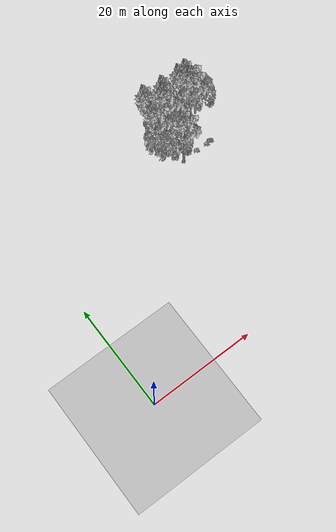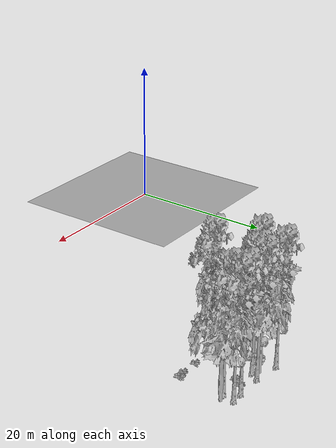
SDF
<sdf version="1.7">
 <world name="default">
  <model name="ground_plane">
   <static>1</static>
   <link name="link">
    <collision name="collision">
     <pose>-50 0 0 0 -0 0</pose>
     <geometry><plane><normal>0 0 1</normal><size>80 80</size></plane></geometry>
     <surface><contact><ode><min_depth>0.01</min_depth><max_vel>0</max_vel></ode></contact></surface>
    </collision>
    <visual name="grass">
     <cast_shadows>0</cast_shadows>
     <geometry>
      <mesh>
       <scale>0.46714285714285714 0.46714285714285714 0.1</scale>
       <uri>file://grass_plane/meshes/grass_plane.dae</uri>
      </mesh>
     </geometry>
    </visual>
   </link>
  </model>
  <model name="Tree 117">
   <static>1</static>
   <pose>35.58147520326497 39.32849639410783 0 1.57079 -0 0</pose>
   <link name="link">
    <collision name="collision">
     <geometry><mesh><scale>3.5 5 3.5</scale><uri>model://tree_9/meshes/tree_9.obj</uri></mesh></geometry>
    </collision>
    <visual name="visual">
     <geometry><mesh><scale>3.5 5 3.5</scale><uri>model://tree_9/meshes/tree_9.obj</uri></mesh></geometry>
    </visual>
   </link>
  </model>
  <model name="Tree 137">
   <static>1</static>
   <pose>38.25605384794942 38.461657270254776 0 1.57079 -0 0</pose>
   <link name="link">
    <collision name="collision">
     <geometry><mesh><scale>3.5 5 3.5</scale><uri>model://tree_2/meshes/tree_2.obj</uri></mesh></geometry>
    </collision>
    <visual name="visual">
     <geometry><mesh><scale>3.5 5 3.5</scale><uri>model://tree_2/meshes/tree_2.obj</uri></mesh></geometry>
    </visual>
   </link>
  </model>
  <model name="Tree 165">
   <static>1</static>
   <pose>37.071473663392155 39.37795550022172 0 1.57079 -0 0</pose>
   <link name="link">
    <collision name="collision">
     <geometry><mesh><scale>3.5 5 3.5</scale><uri>model://tree_9/meshes/tree_9.obj</uri></mesh></geometry>
    </collision>
    <visual name="visual">
     <geometry><mesh><scale>3.5 5 3.5</scale><uri>model://tree_9/meshes/tree_9.obj</uri></mesh></geometry>
    </visual>
   </link>
  </model>
  <model name="Tree 251">
   <static>1</static>
   <pose>29.38675334142428 33.38608917403582 0 1.57079 -0 0</pose>
   <link name="link">
    <collision name="collision">
     <geometry><mesh><scale>3.5 5 3.5</scale><uri>model://tree_2/meshes/tree_2.obj</uri></mesh></geometry>
    </collision>
    <visual name="visual">
     <geometry><mesh><scale>3.5 5 3.5</scale><uri>model://tree_2/meshes/tree_2.obj</uri></mesh></geometry>
    </visual>
   </link>
  </model>
  <model name="Tree 351">
   <static>1</static>
   <pose>28.522954845922825 35.44630254125421 0 1.57079 -0 0</pose>
   <link name="link">
    <collision name="collision">
     <geometry><mesh><scale>3.5 5 3.5</scale><uri>model://tree_2/meshes/tree_2.obj</uri></mesh></geometry>
    </collision>
    <visual name="visual">
     <geometry><mesh><scale>3.5 5 3.5</scale><uri>model://tree_2/meshes/tree_2.obj</uri></mesh></geometry>
    </visual>
   </link>
  </model>
  <model name="Tree 413">
   <static>1</static>
   <pose>36.794026243615036 37.89402465982626 0 1.57079 -0 0</pose>
   <link name="link">
    <collision name="collision">
     <geometry><mesh><scale>3.5 5 3.5</scale><uri>model://tree_9/meshes/tree_9.obj</uri></mesh></geometry>
    </collision>
    <visual name="visual">
     <geometry><mesh><scale>3.5 5 3.5</scale><uri>model://tree_9/meshes/tree_9.obj</uri></mesh></geometry>
    </visual>
   </link>
  </model>
  <model name="Tree 494">
   <static>1</static>
   <pose>29.810043735012144 36.28128183584424 0 1.57079 -0 0</pose>
   <link name="link">
    <collision name="collision">
     <geometry><mesh><scale>3.5 5 3.5</scale><uri>model://tree_2/meshes/tree_2.obj</uri></mesh></geometry>
    </collision>
    <visual name="visual">
     <geometry><mesh><scale>3.5 5 3.5</scale><uri>model://tree_2/meshes/tree_2.obj</uri></mesh></geometry>
    </visual>
   </link>
  </model>
  <model name="Tree 501">
   <static>1</static>
   <pose>31.385145458730065 38.18989758573741 0 1.57079 -0 0</pose>
   <link name="link">
    <collision name="collision">
     <geometry><mesh><scale>3.5 5 3.5</scale><uri>model://tree_9/meshes/tree_9.obj</uri></mesh></geometry>
    </collision>
    <visual name="visual">
     <geometry><mesh><scale>3.5 5 3.5</scale><uri>model://tree_9/meshes/tree_9.obj</uri></mesh></geometry>
    </visual>
   </link>
  </model>
  <model name="Tree 524">
   <static>1</static>
   <pose>28.63423434896262 39.68240983284322 0 1.57079 -0 0</pose>
   <link name="link">
    <collision name="collision">
     <geometry><mesh><scale>3.5 5 3.5</scale><uri>model://tree_9/meshes/tree_9.obj</uri></mesh></geometry>
    </collision>
    <visual name="visual">
     <geometry><mesh><scale>3.5 5 3.5</scale><uri>model://tree_9/meshes/tree_9.obj</uri></mesh></geometry>
    </visual>
   </link>
  </model>
  <model name="Tree 534">
   <static>1</static>
   <pose>30.869394688324192 32.190862434742485 0 1.57079 -0 0</pose>
   <link name="link">
    <collision name="collision">
     <geometry><mesh><scale>3.5 5 3.5</scale><uri>model://tree_9/meshes/tree_9.obj</uri></mesh></geometry>
    </collision>
    <visual name="visual">
     <geometry><mesh><scale>3.5 5 3.5</scale><uri>model://tree_9/meshes/tree_9.obj</uri></mesh></geometry>
    </visual>
   </link>
  </model>
  <model name="Tree 551">
   <static>1</static>
   <pose>31.212012586435847 39.04339947861422 0 1.57079 -0 0</pose>
   <link name="link">
    <collision name="collision">
     <geometry><mesh><scale>3.5 5 3.5</scale><uri>model://tree_2/meshes/tree_2.obj</uri></mesh></geometry>
    </collision>
    <visual name="visual">
     <geometry><mesh><scale>3.5 5 3.5</scale><uri>model://tree_2/meshes/tree_2.obj</uri></mesh></geometry>
    </visual>
   </link>
  </model>
  <model name="Tree 601">
   <static>1</static>
   <pose>32.136387446565195 39.26584646786824 0 1.57079 -0 0</pose>
   <link name="link">
    <collision name="collision">
     <geometry><mesh><scale>3.5 5 3.5</scale><uri>model://tree_9/meshes/tree_9.obj</uri></mesh></geometry>
    </collision>
    <visual name="visual">
     <geometry><mesh><scale>3.5 5 3.5</scale><uri>model://tree_9/meshes/tree_9.obj</uri></mesh></geometry>
    </visual>
   </link>
  </model>
  <model name="Tree 607">
   <static>1</static>
   <pose>27.926088597943178 36.328938424209966 0 1.57079 -0 0</pose>
   <link name="link">
    <collision name="collision">
     <geometry><mesh><scale>3.5 5 3.5</scale><uri>model://tree_9/meshes/tree_9.obj</uri></mesh></geometry>
    </collision>
    <visual name="visual">
     <geometry><mesh><scale>3.5 5 3.5</scale><uri>model://tree_9/meshes/tree_9.obj</uri></mesh></geometry>
    </visual>
   </link>
  </model>
  <model name="Bush 81">
   <static>1</static>
   <pose>36.96815110661741 32.46302613303814 0 1.57079 -0 0</pose>
   <link name="link">
    <collision name="collision">
     <geometry><mesh><scale>2 2 2</scale><uri>model://bush_2/meshes/bush_2.obj</uri></mesh></geometry>
     <surface><contact><collide_without_contact>false</collide_without_contact></contact></surface>
    </collision>
    <visual name="visual">
     <geometry><mesh><scale>2 2 2</scale><uri>model://bush_2/meshes/bush_2.obj</uri></mesh></geometry>
    </visual>
   </link>
  </model>
  <model name="Bush 144">
   <static>1</static>
   <pose>34.582168682110805 38.689241764468235 0 1.57079 -0 0</pose>
   <link name="link">
    <collision name="collision">
     <geometry><mesh><scale>2 2 2</scale><uri>model://bush_2/meshes/bush_2.obj</uri></mesh></geometry>
     <surface><contact><collide_without_contact>false</collide_without_contact></contact></surface>
    </collision>
    <visual name="visual">
     <geometry><mesh><scale>2 2 2</scale><uri>model://bush_2/meshes/bush_2.obj</uri></mesh></geometry>
    </visual>
   </link>
  </model>
  <model name="Bush 236">
   <static>1</static>
   <pose>27.910735601237036 34.394849581990655 0 1.57079 -0 0</pose>
   <link name="link">
    <collision name="collision">
     <geometry><mesh><scale>2 2 2</scale><uri>model://bush_4/meshes/bush_4.obj</uri></mesh></geometry>
     <surface><contact><collide_without_contact>false</collide_without_contact></contact></surface>
    </collision>
    <visual name="visual">
     <geometry><mesh><scale>2 2 2</scale><uri>model://bush_4/meshes/bush_4.obj</uri></mesh></geometry>
    </visual>
   </link>
  </model>
  <model name="Bush 288">
   <static>1</static>
   <pose>33.87004665692183 37.5965823904865 0 1.57079 -0 0</pose>
   <link name="link">
    <collision name="collision">
     <geometry><mesh><scale>2 2 2</scale><uri>model://bush_2/meshes/bush_2.obj</uri></mesh></geometry>
     <surface><contact><collide_without_contact>false</collide_without_contact></contact></surface>
    </collision>
    <visual name="visual">
     <geometry><mesh><scale>2 2 2</scale><uri>model://bush_2/meshes/bush_2.obj</uri></mesh></geometry>
    </visual>
   </link>
  </model>
  <model name="Bush 327">
   <static>1</static>
   <pose>32.362775153611764 34.525752191991785 0 1.57079 -0 0</pose>
   <link name="link">
    <collision name="collision">
     <geometry><mesh><scale>2 2 2</scale><uri>model://bush_5/meshes/bush_5.obj</uri></mesh></geometry>
     <surface><contact><collide_without_contact>false</collide_without_contact></contact></surface>
    </collision>
    <visual name="visual">
     <geometry><mesh><scale>2 2 2</scale><uri>model://bush_5/meshes/bush_5.obj</uri></mesh></geometry>
    </visual>
   </link>
  </model>
  <model name="Bush 397">
   <static>1</static>
   <pose>37.160699007918424 32.29716276766342 0 1.57079 -0 0</pose>
   <link name="link">
    <collision name="collision">
     <geometry><mesh><scale>2 2 2</scale><uri>model://bush_2/meshes/bush_2.obj</uri></mesh></geometry>
     <surface><contact><collide_without_contact>false</collide_without_contact></contact></surface>
    </collision>
    <visual name="visual">
     <geometry><mesh><scale>2 2 2</scale><uri>model://bush_2/meshes/bush_2.obj</uri></mesh></geometry>
    </visual>
   </link>
  </model>
  <model name="Bush 427">
   <static>1</static>
   <pose>28.52049911576293 35.48611673419548 0 1.57079 -0 0</pose>
   <link name="link">
    <collision name="collision">
     <geometry><mesh><scale>2 2 2</scale><uri>model://bush_2/meshes/bush_2.obj</uri></mesh></geometry>
     <surface><contact><collide_without_contact>false</collide_without_contact></contact></surface>
    </collision>
    <visual name="visual">
     <geometry><mesh><scale>2 2 2</scale><uri>model://bush_2/meshes/bush_2.obj</uri></mesh></geometry>
    </visual>
   </link>
  </model>
  <model name="Bush 463">
   <static>1</static>
   <pose>30.394307006394513 38.17481709772383 0 1.57079 -0 0</pose>
   <link name="link">
    <collision name="collision">
     <geometry><mesh><scale>2 2 2</scale><uri>model://bush_1/meshes/bush_1.obj</uri></mesh></geometry>
     <surface><contact><collide_without_contact>false</collide_without_contact></contact></surface>
    </collision>
    <visual name="visual">
     <geometry><mesh><scale>2 2 2</scale><uri>model://bush_1/meshes/bush_1.obj</uri></mesh></geometry>
    </visual>
   </link>
  </model>
  <model name="Bush 608">
   <static>1</static>
   <pose>33.887453052594154 32.28359543433645 0 1.57079 -0 0</pose>
   <link name="link">
    <collision name="collision">
     <geometry><mesh><scale>2 2 2</scale><uri>model://bush_2/meshes/bush_2.obj</uri></mesh></geometry>
     <surface><contact><collide_without_contact>false</collide_without_contact></contact></surface>
    </collision>
    <visual name="visual">
     <geometry><mesh><scale>2 2 2</scale><uri>model://bush_2/meshes/bush_2.obj</uri></mesh></geometry>
    </visual>
   </link>
  </model>
  <model name="Bush 611">
   <static>1</static>
   <pose>36.15953660407172 32.21567444285134 0 1.57079 -0 0</pose>
   <link name="link">
    <collision name="collision">
     <geometry><mesh><scale>2 2 2</scale><uri>model://bush_2/meshes/bush_2.obj</uri></mesh></geometry>
     <surface><contact><collide_without_contact>false</collide_without_contact></contact></surface>
    </collision>
    <visual name="visual">
     <geometry><mesh><scale>2 2 2</scale><uri>model://bush_2/meshes/bush_2.obj</uri></mesh></geometry>
    </visual>
   </link>
  </model>
 </world>
</sdf>
